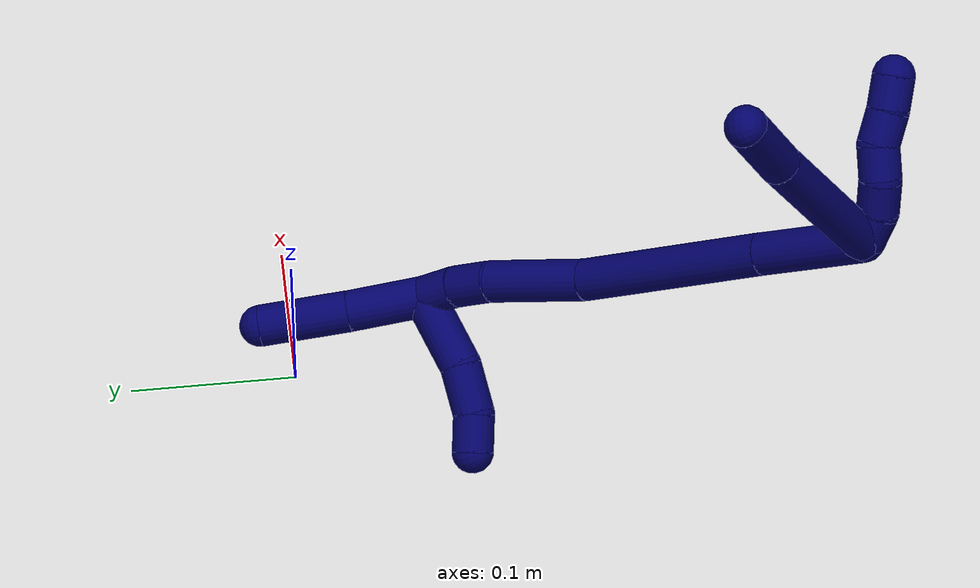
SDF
<sdf version="1.7">
 <world name="default">
  <model name="7">
   <static>0</static>
   <link name="7">
    <collision name="collision-cylinder-e_1_2_8">
     <pose>0.03361 0.038724 0.003011 -1.49321 0.713333 -0.663996</pose>
     <geometry><cylinder><radius>0.0125</radius><length>0.102728</length></cylinder></geometry>
     <surface>
      <friction><ode><mu>1.16</mu><mu2>1.16</mu2><slip1>0</slip1><slip2>0</slip2></ode></friction>
      <contact><ode><kp>1e+06</kp><kd>1</kd><max_vel>0</max_vel><min_depth>0.001</min_depth></ode></contact>
     </surface>
    </collision>
    <visual name="visual-cylinder-e_1_2_8">
     <pose>0.03361 0.038724 0.003011 -1.49321 0.713333 -0.663996</pose>
     <geometry><cylinder><radius>0.0125</radius><length>0.102728</length></cylinder></geometry>
     <material><ambient>0.003922 0 0.403922 1</ambient></material>
    </visual>
    <collision name="collision-cylinder-e_2_8_6">
     <pose>0.082414 0.095247 0.009342 -1.38636 0.698126 -0.587214</pose>
     <geometry><cylinder><radius>0.0125</radius><length>0.047272</length></cylinder></geometry>
     <surface>
      <friction><ode><mu>1.16</mu><mu2>1.16</mu2><slip1>0</slip1><slip2>0</slip2></ode></friction>
      <contact><ode><kp>1e+06</kp><kd>1</kd><max_vel>0</max_vel><min_depth>0.001</min_depth></ode></contact>
     </surface>
    </collision>
    <visual name="visual-cylinder-e_2_8_6">
     <pose>0.082414 0.095247 0.009342 -1.38636 0.698126 -0.587214</pose>
     <geometry><cylinder><radius>0.0125</radius><length>0.047272</length></cylinder></geometry>
     <material><ambient>0.003922 0 0.403922 1</ambient></material>
    </visual>
    <collision name="collision-cylinder-e_1_2_9">
     <pose>0.007519 -0.000794 0.006545 0.120715 0.850958 0.054756</pose>
     <geometry><cylinder><radius>0.0125</radius><length>0.02</length></cylinder></geometry>
     <surface>
      <friction><ode><mu>1.16</mu><mu2>1.16</mu2><slip1>0</slip1><slip2>0</slip2></ode></friction>
      <contact><ode><kp>1e+06</kp><kd>1</kd><max_vel>0</max_vel><min_depth>0.001</min_depth></ode></contact>
     </surface>
    </collision>
    <visual name="visual-cylinder-e_1_2_9">
     <pose>0.007519 -0.000794 0.006545 0.120715 0.850958 0.054756</pose>
     <geometry><cylinder><radius>0.0125</radius><length>0.02</length></cylinder></geometry>
     <material><ambient>0.003922 0 0.403922 1</ambient></material>
    </visual>
    <collision name="collision-cylinder-e_2_9_10">
     <pose>0.024153 -0.000881 0.017142 -0.172565 1.14684 -0.111604</pose>
     <geometry><cylinder><radius>0.0125</radius><length>0.02</length></cylinder></geometry>
     <surface>
      <friction><ode><mu>1.16</mu><mu2>1.16</mu2><slip1>0</slip1><slip2>0</slip2></ode></friction>
      <contact><ode><kp>1e+06</kp><kd>1</kd><max_vel>0</max_vel><min_depth>0.001</min_depth></ode></contact>
     </surface>
    </collision>
    <visual name="visual-cylinder-e_2_9_10">
     <pose>0.024153 -0.000881 0.017142 -0.172565 1.14684 -0.111604</pose>
     <geometry><cylinder><radius>0.0125</radius><length>0.02</length></cylinder></geometry>
     <material><ambient>0.003922 0 0.403922 1</ambient></material>
    </visual>
    <collision name="collision-cylinder-e_3_10_11">
     <pose>0.043059 -0.001533 0.022706 0.73213 1.36618 0.604783</pose>
     <geometry><cylinder><radius>0.0125</radius><length>0.02</length></cylinder></geometry>
     <surface>
      <friction><ode><mu>1.16</mu><mu2>1.16</mu2><slip1>0</slip1><slip2>0</slip2></ode></friction>
      <contact><ode><kp>1e+06</kp><kd>1</kd><max_vel>0</max_vel><min_depth>0.001</min_depth></ode></contact>
     </surface>
    </collision>
    <visual name="visual-cylinder-e_3_10_11">
     <pose>0.043059 -0.001533 0.022706 0.73213 1.36618 0.604783</pose>
     <geometry><cylinder><radius>0.0125</radius><length>0.02</length></cylinder></geometry>
     <material><ambient>0.003922 0 0.403922 1</ambient></material>
    </visual>
    <collision name="collision-cylinder-e_4_11_12">
     <pose>0.061363 -0.006109 0.028362 0.660179 1.01842 0.378024</pose>
     <geometry><cylinder><radius>0.0125</radius><length>0.02</length></cylinder></geometry>
     <surface>
      <friction><ode><mu>1.16</mu><mu2>1.16</mu2><slip1>0</slip1><slip2>0</slip2></ode></friction>
      <contact><ode><kp>1e+06</kp><kd>1</kd><max_vel>0</max_vel><min_depth>0.001</min_depth></ode></contact>
     </surface>
    </collision>
    <visual name="visual-cylinder-e_4_11_12">
     <pose>0.061363 -0.006109 0.028362 0.660179 1.01842 0.378024</pose>
     <geometry><cylinder><radius>0.0125</radius><length>0.02</length></cylinder></geometry>
     <material><ambient>0.003922 0 0.403922 1</ambient></material>
    </visual>
    <collision name="collision-cylinder-e_5_12_5">
     <pose>0.078828 -0.012682 0.035439 0.852555 1.10896 0.548304</pose>
     <geometry><cylinder><radius>0.0125</radius><length>0.02</length></cylinder></geometry>
     <surface>
      <friction><ode><mu>1.16</mu><mu2>1.16</mu2><slip1>0</slip1><slip2>0</slip2></ode></friction>
      <contact><ode><kp>1e+06</kp><kd>1</kd><max_vel>0</max_vel><min_depth>0.001</min_depth></ode></contact>
     </surface>
    </collision>
    <visual name="visual-cylinder-e_5_12_5">
     <pose>0.078828 -0.012682 0.035439 0.852555 1.10896 0.548304</pose>
     <geometry><cylinder><radius>0.0125</radius><length>0.02</length></cylinder></geometry>
     <material><ambient>0.003922 0 0.403922 1</ambient></material>
    </visual>
    <collision name="collision-cylinder-e_1_2_13">
     <pose>0.001186 -0.00034 -0.034024 3.1316 0.034828 2.58268</pose>
     <geometry><cylinder><radius>0.0125</radius><length>0.068092</length></cylinder></geometry>
     <surface>
      <friction><ode><mu>1.16</mu><mu2>1.16</mu2><slip1>0</slip1><slip2>0</slip2></ode></friction>
      <contact><ode><kp>1e+06</kp><kd>1</kd><max_vel>0</max_vel><min_depth>0.001</min_depth></ode></contact>
     </surface>
    </collision>
    <visual name="visual-cylinder-e_1_2_13">
     <pose>0.001186 -0.00034 -0.034024 3.1316 0.034828 2.58268</pose>
     <geometry><cylinder><radius>0.0125</radius><length>0.068092</length></cylinder></geometry>
     <material><ambient>0.003922 0 0.403922 1</ambient></material>
    </visual>
    <collision name="collision-cylinder-e_2_13_14">
     <pose>0.003598 -0.000648 -0.128662 -3.14106 0.020244 -3.08868</pose>
     <geometry><cylinder><radius>0.0125</radius><length>0.121255</length></cylinder></geometry>
     <surface>
      <friction><ode><mu>1.16</mu><mu2>1.16</mu2><slip1>0</slip1><slip2>0</slip2></ode></friction>
      <contact><ode><kp>1e+06</kp><kd>1</kd><max_vel>0</max_vel><min_depth>0.001</min_depth></ode></contact>
     </surface>
    </collision>
    <visual name="visual-cylinder-e_2_13_14">
     <pose>0.003598 -0.000648 -0.128662 -3.14106 0.020244 -3.08868</pose>
     <geometry><cylinder><radius>0.0125</radius><length>0.121255</length></cylinder></geometry>
     <material><ambient>0.003922 0 0.403922 1</ambient></material>
    </visual>
    <collision name="collision-cylinder-e_3_14_15">
     <pose>0.009534 0.001437 -0.219791 -3.07444 0.15275 -2.3144</pose>
     <geometry><cylinder><radius>0.0125</radius><length>0.061886</length></cylinder></geometry>
     <surface>
      <friction><ode><mu>1.16</mu><mu2>1.16</mu2><slip1>0</slip1><slip2>0</slip2></ode></friction>
      <contact><ode><kp>1e+06</kp><kd>1</kd><max_vel>0</max_vel><min_depth>0.001</min_depth></ode></contact>
     </surface>
    </collision>
    <visual name="visual-cylinder-e_3_14_15">
     <pose>0.009534 0.001437 -0.219791 -3.07444 0.15275 -2.3144</pose>
     <geometry><cylinder><radius>0.0125</radius><length>0.061886</length></cylinder></geometry>
     <material><ambient>0.003922 0 0.403922 1</ambient></material>
    </visual>
    <collision name="collision-cylinder-e_4_15_16">
     <pose>0.014455 0.003238 -0.263034 3.12192 0.016772 1.41181</pose>
     <geometry><cylinder><radius>0.0125</radius><length>0.025467</length></cylinder></geometry>
     <surface>
      <friction><ode><mu>1.16</mu><mu2>1.16</mu2><slip1>0</slip1><slip2>0</slip2></ode></friction>
      <contact><ode><kp>1e+06</kp><kd>1</kd><max_vel>0</max_vel><min_depth>0.001</min_depth></ode></contact>
     </surface>
    </collision>
    <visual name="visual-cylinder-e_4_15_16">
     <pose>0.014455 0.003238 -0.263034 3.12192 0.016772 1.41181</pose>
     <geometry><cylinder><radius>0.0125</radius><length>0.025467</length></cylinder></geometry>
     <material><ambient>0.003922 0 0.403922 1</ambient></material>
    </visual>
    <collision name="collision-cylinder-e_5_16_1">
     <pose>0.013384 0.003358 -0.287336 -3.10963 -0.110543 2.57921</pose>
     <geometry><cylinder><radius>0.0125</radius><length>0.0233</length></cylinder></geometry>
     <surface>
      <friction><ode><mu>1.16</mu><mu2>1.16</mu2><slip1>0</slip1><slip2>0</slip2></ode></friction>
      <contact><ode><kp>1e+06</kp><kd>1</kd><max_vel>0</max_vel><min_depth>0.001</min_depth></ode></contact>
     </surface>
    </collision>
    <visual name="visual-cylinder-e_5_16_1">
     <pose>0.013384 0.003358 -0.287336 -3.10963 -0.110543 2.57921</pose>
     <geometry><cylinder><radius>0.0125</radius><length>0.0233</length></cylinder></geometry>
     <material><ambient>0.003922 0 0.403922 1</ambient></material>
    </visual>
    <collision name="collision-cylinder-e_1_1_17">
     <pose>0.013691 0.014163 -0.319359 -2.66975 0.069255 -0.286231</pose>
     <geometry><cylinder><radius>0.0125</radius><length>0.046027</length></cylinder></geometry>
     <surface>
      <friction><ode><mu>1.16</mu><mu2>1.16</mu2><slip1>0</slip1><slip2>0</slip2></ode></friction>
      <contact><ode><kp>1e+06</kp><kd>1</kd><max_vel>0</max_vel><min_depth>0.001</min_depth></ode></contact>
     </surface>
    </collision>
    <visual name="visual-cylinder-e_1_1_17">
     <pose>0.013691 0.014163 -0.319359 -2.66975 0.069255 -0.286231</pose>
     <geometry><cylinder><radius>0.0125</radius><length>0.046027</length></cylinder></geometry>
     <material><ambient>0.003922 0 0.403922 1</ambient></material>
    </visual>
    <collision name="collision-cylinder-e_2_17_4">
     <pose>0.018043 0.037144 -0.363542 -2.65532 0.102442 -0.407624</pose>
     <geometry><cylinder><radius>0.0125</radius><length>0.053973</length></cylinder></geometry>
     <surface>
      <friction><ode><mu>1.16</mu><mu2>1.16</mu2><slip1>0</slip1><slip2>0</slip2></ode></friction>
      <contact><ode><kp>1e+06</kp><kd>1</kd><max_vel>0</max_vel><min_depth>0.001</min_depth></ode></contact>
     </surface>
    </collision>
    <visual name="visual-cylinder-e_2_17_4">
     <pose>0.018043 0.037144 -0.363542 -2.65532 0.102442 -0.407624</pose>
     <geometry><cylinder><radius>0.0125</radius><length>0.053973</length></cylinder></geometry>
     <material><ambient>0.003922 0 0.403922 1</ambient></material>
    </visual>
    <collision name="collision-cylinder-e_1_1_18">
     <pose>-0.009542 0.008056 -0.290273 -0.464548 -1.15094 0.304523</pose>
     <geometry><cylinder><radius>0.0125</radius><length>0.047398</length></cylinder></geometry>
     <surface>
      <friction><ode><mu>1.16</mu><mu2>1.16</mu2><slip1>0</slip1><slip2>0</slip2></ode></friction>
      <contact><ode><kp>1e+06</kp><kd>1</kd><max_vel>0</max_vel><min_depth>0.001</min_depth></ode></contact>
     </surface>
    </collision>
    <visual name="visual-cylinder-e_1_1_18">
     <pose>-0.009542 0.008056 -0.290273 -0.464548 -1.15094 0.304523</pose>
     <geometry><cylinder><radius>0.0125</radius><length>0.047398</length></cylinder></geometry>
     <material><ambient>0.003922 0 0.403922 1</ambient></material>
    </visual>
    <collision name="collision-cylinder-e_2_18_19">
     <pose>-0.045634 0.015382 -0.27985 -1.03335 -1.33385 0.841186</pose>
     <geometry><cylinder><radius>0.0125</radius><length>0.029733</length></cylinder></geometry>
     <surface>
      <friction><ode><mu>1.16</mu><mu2>1.16</mu2><slip1>0</slip1><slip2>0</slip2></ode></friction>
      <contact><ode><kp>1e+06</kp><kd>1</kd><max_vel>0</max_vel><min_depth>0.001</min_depth></ode></contact>
     </surface>
    </collision>
    <visual name="visual-cylinder-e_2_18_19">
     <pose>-0.045634 0.015382 -0.27985 -1.03335 -1.33385 0.841186</pose>
     <geometry><cylinder><radius>0.0125</radius><length>0.029733</length></cylinder></geometry>
     <material><ambient>0.003922 0 0.403922 1</ambient></material>
    </visual>
    <collision name="collision-cylinder-e_3_19_3">
     <pose>-0.070824 0.021807 -0.279983 -2.08143 -1.22005 1.74611</pose>
     <geometry><cylinder><radius>0.0125</radius><length>0.022869</length></cylinder></geometry>
     <surface>
      <friction><ode><mu>1.16</mu><mu2>1.16</mu2><slip1>0</slip1><slip2>0</slip2></ode></friction>
      <contact><ode><kp>1e+06</kp><kd>1</kd><max_vel>0</max_vel><min_depth>0.001</min_depth></ode></contact>
     </surface>
    </collision>
    <visual name="visual-cylinder-e_3_19_3">
     <pose>-0.070824 0.021807 -0.279983 -2.08143 -1.22005 1.74611</pose>
     <geometry><cylinder><radius>0.0125</radius><length>0.022869</length></cylinder></geometry>
     <material><ambient>0.003922 0 0.403922 1</ambient></material>
    </visual>
    <collision name="collision-sphere-3">
     <pose>-0.081562 0.025235 -0.281903 0 -0 0</pose>
     <geometry><sphere><radius>0.0125</radius></sphere></geometry>
     <surface>
      <friction><ode><mu>1.16</mu><mu2>1.16</mu2><slip1>0</slip1><slip2>0</slip2></ode></friction>
      <contact><ode><kp>1e+06</kp><kd>1</kd><max_vel>0</max_vel><min_depth>0.001</min_depth></ode></contact>
     </surface>
    </collision>
    <visual name="visual-sphere-3">
     <pose>-0.081562 0.025235 -0.281903 0 -0 0</pose>
     <geometry><sphere><radius>0.0125</radius></sphere></geometry>
     <material><ambient>0.003922 0 0.403922 1</ambient></material>
    </visual>
    <collision name="collision-sphere-19">
     <pose>-0.060085 0.01838 -0.278063 0 -0 0</pose>
     <geometry><sphere><radius>0.0125</radius></sphere></geometry>
     <surface>
      <friction><ode><mu>1.16</mu><mu2>1.16</mu2><slip1>0</slip1><slip2>0</slip2></ode></friction>
      <contact><ode><kp>1e+06</kp><kd>1</kd><max_vel>0</max_vel><min_depth>0.001</min_depth></ode></contact>
     </surface>
    </collision>
    <visual name="visual-sphere-19">
     <pose>-0.060085 0.01838 -0.278063 0 -0 0</pose>
     <geometry><sphere><radius>0.0125</radius></sphere></geometry>
     <material><ambient>0.003922 0 0.403922 1</ambient></material>
    </visual>
    <collision name="collision-sphere-11">
     <pose>0.05285 -0.002892 0.024217 0 -0 0</pose>
     <geometry><sphere><radius>0.0125</radius></sphere></geometry>
     <surface>
      <friction><ode><mu>1.16</mu><mu2>1.16</mu2><slip1>0</slip1><slip2>0</slip2></ode></friction>
      <contact><ode><kp>1e+06</kp><kd>1</kd><max_vel>0</max_vel><min_depth>0.001</min_depth></ode></contact>
     </surface>
    </collision>
    <visual name="visual-sphere-11">
     <pose>0.05285 -0.002892 0.024217 0 -0 0</pose>
     <geometry><sphere><radius>0.0125</radius></sphere></geometry>
     <material><ambient>0.003922 0 0.403922 1</ambient></material>
    </visual>
    <collision name="collision-sphere-10">
     <pose>0.033268 -0.000175 0.021195 0 -0 0</pose>
     <geometry><sphere><radius>0.0125</radius></sphere></geometry>
     <surface>
      <friction><ode><mu>1.16</mu><mu2>1.16</mu2><slip1>0</slip1><slip2>0</slip2></ode></friction>
      <contact><ode><kp>1e+06</kp><kd>1</kd><max_vel>0</max_vel><min_depth>0.001</min_depth></ode></contact>
     </surface>
    </collision>
    <visual name="visual-sphere-10">
     <pose>0.033268 -0.000175 0.021195 0 -0 0</pose>
     <geometry><sphere><radius>0.0125</radius></sphere></geometry>
     <material><ambient>0.003922 0 0.403922 1</ambient></material>
    </visual>
    <collision name="collision-sphere-6">
     <pose>0.097607 0.113046 0.012662 0 -0 0</pose>
     <geometry><sphere><radius>0.0125</radius></sphere></geometry>
     <surface>
      <friction><ode><mu>1.16</mu><mu2>1.16</mu2><slip1>0</slip1><slip2>0</slip2></ode></friction>
      <contact><ode><kp>1e+06</kp><kd>1</kd><max_vel>0</max_vel><min_depth>0.001</min_depth></ode></contact>
     </surface>
    </collision>
    <visual name="visual-sphere-6">
     <pose>0.097607 0.113046 0.012662 0 -0 0</pose>
     <geometry><sphere><radius>0.0125</radius></sphere></geometry>
     <material><ambient>0.003922 0 0.403922 1</ambient></material>
    </visual>
    <collision name="collision-sphere-9">
     <pose>0.015038 -0.001588 0.013089 0 -0 0</pose>
     <geometry><sphere><radius>0.0125</radius></sphere></geometry>
     <surface>
      <friction><ode><mu>1.16</mu><mu2>1.16</mu2><slip1>0</slip1><slip2>0</slip2></ode></friction>
      <contact><ode><kp>1e+06</kp><kd>1</kd><max_vel>0</max_vel><min_depth>0.001</min_depth></ode></contact>
     </surface>
    </collision>
    <visual name="visual-sphere-9">
     <pose>0.015038 -0.001588 0.013089 0 -0 0</pose>
     <geometry><sphere><radius>0.0125</radius></sphere></geometry>
     <material><ambient>0.003922 0 0.403922 1</ambient></material>
    </visual>
    <collision name="collision-sphere-2">
     <geometry><sphere><radius>0.0125</radius></sphere></geometry>
     <surface>
      <friction><ode><mu>1.16</mu><mu2>1.16</mu2><slip1>0</slip1><slip2>0</slip2></ode></friction>
      <contact><ode><kp>1e+06</kp><kd>1</kd><max_vel>0</max_vel><min_depth>0.001</min_depth></ode></contact>
     </surface>
    </collision>
    <visual name="visual-sphere-2">
     <geometry><sphere><radius>0.0125</radius></sphere></geometry>
     <material><ambient>0.003922 0 0.403922 1</ambient></material>
    </visual>
    <collision name="collision-sphere-8">
     <pose>0.067221 0.077447 0.006021 0 -0 0</pose>
     <geometry><sphere><radius>0.0125</radius></sphere></geometry>
     <surface>
      <friction><ode><mu>1.16</mu><mu2>1.16</mu2><slip1>0</slip1><slip2>0</slip2></ode></friction>
      <contact><ode><kp>1e+06</kp><kd>1</kd><max_vel>0</max_vel><min_depth>0.001</min_depth></ode></contact>
     </surface>
    </collision>
    <visual name="visual-sphere-8">
     <pose>0.067221 0.077447 0.006021 0 -0 0</pose>
     <geometry><sphere><radius>0.0125</radius></sphere></geometry>
     <material><ambient>0.003922 0 0.403922 1</ambient></material>
    </visual>
    <collision name="collision-sphere-12">
     <pose>0.069876 -0.009327 0.032506 0 -0 0</pose>
     <geometry><sphere><radius>0.0125</radius></sphere></geometry>
     <surface>
      <friction><ode><mu>1.16</mu><mu2>1.16</mu2><slip1>0</slip1><slip2>0</slip2></ode></friction>
      <contact><ode><kp>1e+06</kp><kd>1</kd><max_vel>0</max_vel><min_depth>0.001</min_depth></ode></contact>
     </surface>
    </collision>
    <visual name="visual-sphere-12">
     <pose>0.069876 -0.009327 0.032506 0 -0 0</pose>
     <geometry><sphere><radius>0.0125</radius></sphere></geometry>
     <material><ambient>0.003922 0 0.403922 1</ambient></material>
    </visual>
    <collision name="collision-sphere-5">
     <pose>0.087781 -0.016038 0.038371 0 -0 0</pose>
     <geometry><sphere><radius>0.0125</radius></sphere></geometry>
     <surface>
      <friction><ode><mu>1.16</mu><mu2>1.16</mu2><slip1>0</slip1><slip2>0</slip2></ode></friction>
      <contact><ode><kp>1e+06</kp><kd>1</kd><max_vel>0</max_vel><min_depth>0.001</min_depth></ode></contact>
     </surface>
    </collision>
    <visual name="visual-sphere-5">
     <pose>0.087781 -0.016038 0.038371 0 -0 0</pose>
     <geometry><sphere><radius>0.0125</radius></sphere></geometry>
     <material><ambient>0.003922 0 0.403922 1</ambient></material>
    </visual>
    <collision name="collision-sphere-13">
     <pose>0.002371 -0.00068 -0.068047 0 -0 0</pose>
     <geometry><sphere><radius>0.0125</radius></sphere></geometry>
     <surface>
      <friction><ode><mu>1.16</mu><mu2>1.16</mu2><slip1>0</slip1><slip2>0</slip2></ode></friction>
      <contact><ode><kp>1e+06</kp><kd>1</kd><max_vel>0</max_vel><min_depth>0.001</min_depth></ode></contact>
     </surface>
    </collision>
    <visual name="visual-sphere-13">
     <pose>0.002371 -0.00068 -0.068047 0 -0 0</pose>
     <geometry><sphere><radius>0.0125</radius></sphere></geometry>
     <material><ambient>0.003922 0 0.403922 1</ambient></material>
    </visual>
    <collision name="collision-sphere-14">
     <pose>0.004826 -0.000615 -0.189278 0 -0 0</pose>
     <geometry><sphere><radius>0.0125</radius></sphere></geometry>
     <surface>
      <friction><ode><mu>1.16</mu><mu2>1.16</mu2><slip1>0</slip1><slip2>0</slip2></ode></friction>
      <contact><ode><kp>1e+06</kp><kd>1</kd><max_vel>0</max_vel><min_depth>0.001</min_depth></ode></contact>
     </surface>
    </collision>
    <visual name="visual-sphere-14">
     <pose>0.004826 -0.000615 -0.189278 0 -0 0</pose>
     <geometry><sphere><radius>0.0125</radius></sphere></geometry>
     <material><ambient>0.003922 0 0.403922 1</ambient></material>
    </visual>
    <collision name="collision-sphere-15">
     <pose>0.014242 0.003489 -0.250305 0 -0 0</pose>
     <geometry><sphere><radius>0.0125</radius></sphere></geometry>
     <surface>
      <friction><ode><mu>1.16</mu><mu2>1.16</mu2><slip1>0</slip1><slip2>0</slip2></ode></friction>
      <contact><ode><kp>1e+06</kp><kd>1</kd><max_vel>0</max_vel><min_depth>0.001</min_depth></ode></contact>
     </surface>
    </collision>
    <visual name="visual-sphere-15">
     <pose>0.014242 0.003489 -0.250305 0 -0 0</pose>
     <geometry><sphere><radius>0.0125</radius></sphere></geometry>
     <material><ambient>0.003922 0 0.403922 1</ambient></material>
    </visual>
    <collision name="collision-sphere-16">
     <pose>0.014669 0.002988 -0.275763 0 -0 0</pose>
     <geometry><sphere><radius>0.0125</radius></sphere></geometry>
     <surface>
      <friction><ode><mu>1.16</mu><mu2>1.16</mu2><slip1>0</slip1><slip2>0</slip2></ode></friction>
      <contact><ode><kp>1e+06</kp><kd>1</kd><max_vel>0</max_vel><min_depth>0.001</min_depth></ode></contact>
     </surface>
    </collision>
    <visual name="visual-sphere-16">
     <pose>0.014669 0.002988 -0.275763 0 -0 0</pose>
     <geometry><sphere><radius>0.0125</radius></sphere></geometry>
     <material><ambient>0.003922 0 0.403922 1</ambient></material>
    </visual>
    <collision name="collision-sphere-1">
     <pose>0.012099 0.003728 -0.298909 0 -0 0</pose>
     <geometry><sphere><radius>0.0125</radius></sphere></geometry>
     <surface>
      <friction><ode><mu>1.16</mu><mu2>1.16</mu2><slip1>0</slip1><slip2>0</slip2></ode></friction>
      <contact><ode><kp>1e+06</kp><kd>1</kd><max_vel>0</max_vel><min_depth>0.001</min_depth></ode></contact>
     </surface>
    </collision>
    <visual name="visual-sphere-1">
     <pose>0.012099 0.003728 -0.298909 0 -0 0</pose>
     <geometry><sphere><radius>0.0125</radius></sphere></geometry>
     <material><ambient>0.003922 0 0.403922 1</ambient></material>
    </visual>
    <collision name="collision-sphere-18">
     <pose>-0.031183 0.012384 -0.281636 0 -0 0</pose>
     <geometry><sphere><radius>0.0125</radius></sphere></geometry>
     <surface>
      <friction><ode><mu>1.16</mu><mu2>1.16</mu2><slip1>0</slip1><slip2>0</slip2></ode></friction>
      <contact><ode><kp>1e+06</kp><kd>1</kd><max_vel>0</max_vel><min_depth>0.001</min_depth></ode></contact>
     </surface>
    </collision>
    <visual name="visual-sphere-18">
     <pose>-0.031183 0.012384 -0.281636 0 -0 0</pose>
     <geometry><sphere><radius>0.0125</radius></sphere></geometry>
     <material><ambient>0.003922 0 0.403922 1</ambient></material>
    </visual>
    <collision name="collision-sphere-17">
     <pose>0.015284 0.024598 -0.339809 0 -0 0</pose>
     <geometry><sphere><radius>0.0125</radius></sphere></geometry>
     <surface>
      <friction><ode><mu>1.16</mu><mu2>1.16</mu2><slip1>0</slip1><slip2>0</slip2></ode></friction>
      <contact><ode><kp>1e+06</kp><kd>1</kd><max_vel>0</max_vel><min_depth>0.001</min_depth></ode></contact>
     </surface>
    </collision>
    <visual name="visual-sphere-17">
     <pose>0.015284 0.024598 -0.339809 0 -0 0</pose>
     <geometry><sphere><radius>0.0125</radius></sphere></geometry>
     <material><ambient>0.003922 0 0.403922 1</ambient></material>
    </visual>
    <collision name="collision-sphere-4">
     <pose>0.020803 0.049689 -0.387275 0 -0 0</pose>
     <geometry><sphere><radius>0.0125</radius></sphere></geometry>
     <surface>
      <friction><ode><mu>1.16</mu><mu2>1.16</mu2><slip1>0</slip1><slip2>0</slip2></ode></friction>
      <contact><ode><kp>1e+06</kp><kd>1</kd><max_vel>0</max_vel><min_depth>0.001</min_depth></ode></contact>
     </surface>
    </collision>
    <visual name="visual-sphere-4">
     <pose>0.020803 0.049689 -0.387275 0 -0 0</pose>
     <geometry><sphere><radius>0.0125</radius></sphere></geometry>
     <material><ambient>0.003922 0 0.403922 1</ambient></material>
    </visual>
    <inertial>
     <pose>0.015479 0.016244 -0.139682 0 -0 0</pose>
     <mass>0.75</mass>
     <inertia>
      <ixx>-0.00015</ixx>
      <ixy>0</ixy>
      <ixz>0</ixz>
      <iyy>0.000199</iyy>
      <iyz>0</iyz>
      <izz>-0.000189</izz>
     </inertia>
    </inertial>
   </link>
   <pose>-0.124569 -0.319803 0.226772 0.708455 -0.847328 0.317446</pose>
  </model>
 </world>
</sdf>
